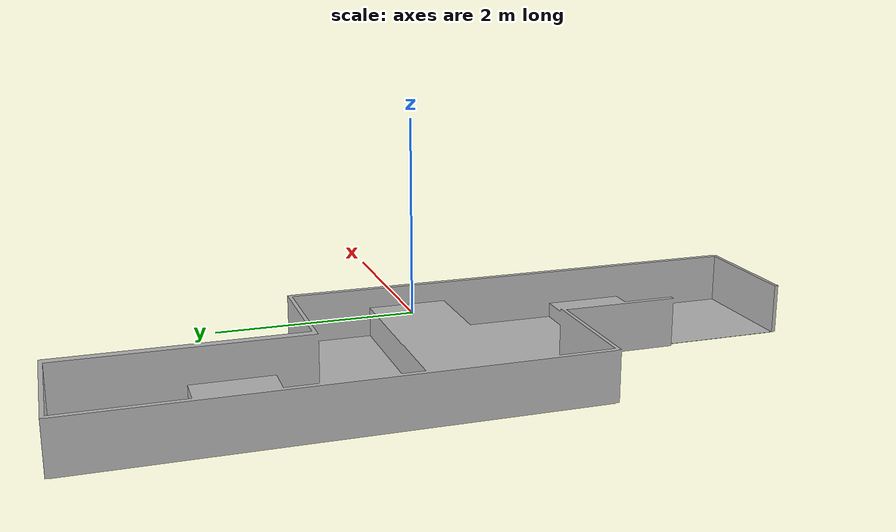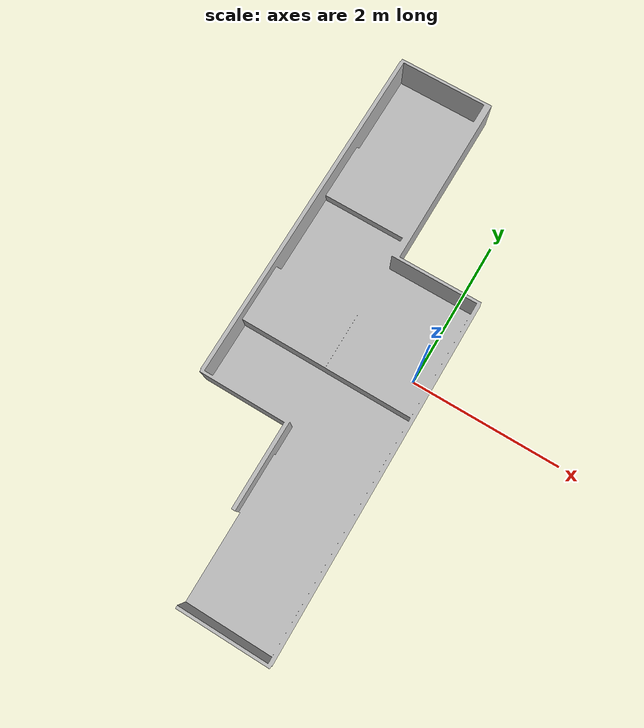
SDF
<?xml version="1.0" ?>
<sdf version="1.6">
  <model name="hurdles">
    <static>true</static>
    <pose>-1 0 0 1.5708 0 0</pose>
    <link name="link">
      <collision name="collision">
        <geometry>
          <mesh>
            <scale>0.01 0.01 0.01</scale>
            <uri>model://hurdles/hurdles.dae</uri>
          </mesh>
        </geometry>
        <surface>
          <friction>
            <ode>
              <mu>100</mu>
              <mu2>50</mu2>
            </ode>
          </friction>
        </surface>
      </collision>
      <visual name="visual">
        <geometry>
          <mesh>
            <scale>0.1 0.1 0.1</scale>
            <uri>model://hurdles/hurdles.dae</uri>
          </mesh>
        </geometry>
      </visual>
    </link>
  </model>
</sdf>
